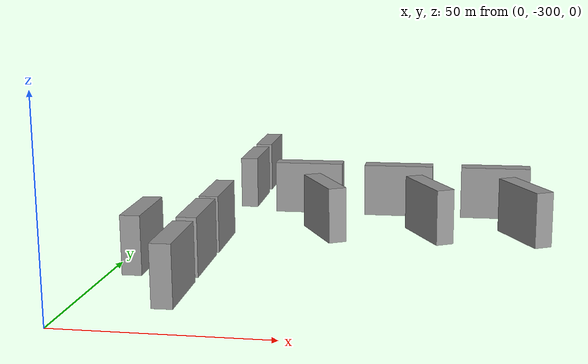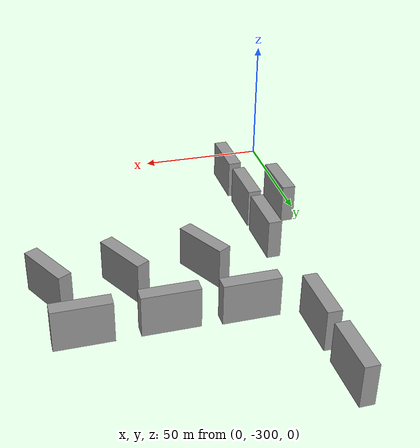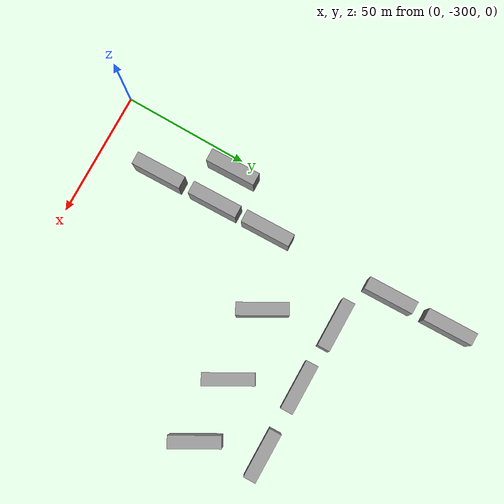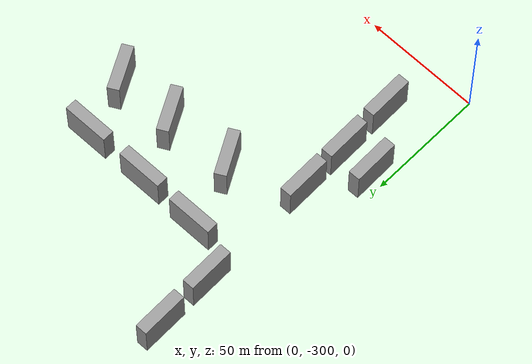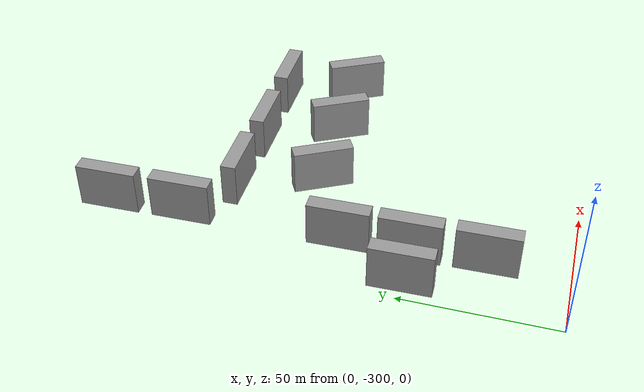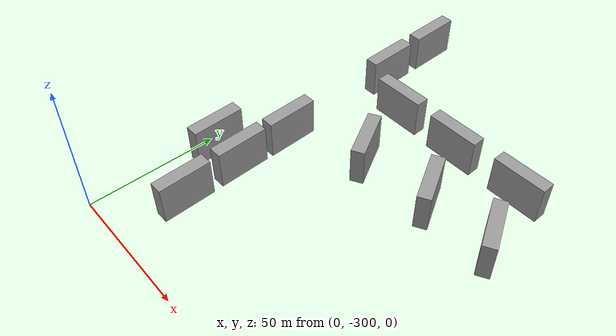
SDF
<sdf version="1.6">
 <world name="darpa_boxes">
  <model name="box_6">
   <link name="link">
    <inertial>
     <mass>1</mass>
     <inertia>
      <ixx>0.166667</ixx>
      <ixy>0</ixy>
      <ixz>0</ixz>
      <iyy>0.166667</iyy>
      <iyz>0</iyz>
      <izz>0.166667</izz>
     </inertia>
     <pose>0 0 7.5 0 -0 0</pose>
    </inertial>
    <visual name="visual">
     <geometry><box><size>5 20 15</size></box></geometry>
     <material>
      <script><name>Gazebo/Grey</name><uri>file://media/materials/scripts/gazebo.material</uri></script>
      <shader type="vertex"><normal_map>_default_</normal_map></shader>
      <ambient>0.3 0.3 0.3 1</ambient>
      <diffuse>0.7 0.7 0.7 1</diffuse>
      <specular>0.01 0.01 0.01 1</specular>
      <emissive>0 0 0 1</emissive>
     </material>
     <pose>0 0 7.5 0 -0 0</pose>
    </visual>
    <collision name="collision">
     <pose>0 0 7.5 0 -0 0</pose>
     <geometry><box><size>5 20 15</size></box></geometry>
     <surface>
      <friction>
       <ode><mu>1</mu><mu2>1</mu2><fdir1>0 0 0</fdir1><slip1>0</slip1><slip2>0</slip2></ode>
       <torsional>
        <coefficient>1</coefficient>
        <patch_radius>0</patch_radius>
        <surface_radius>0</surface_radius>
        <use_patch_radius>1</use_patch_radius>
        <ode><slip>0</slip></ode>
       </torsional>
      </friction>
      <bounce><restitution_coefficient>0</restitution_coefficient><threshold>1e+06</threshold></bounce>
      <contact>
       <collide_without_contact>0</collide_without_contact>
       <collide_without_contact_bitmask>1</collide_without_contact_bitmask>
       <collide_bitmask>1</collide_bitmask>
       <ode>
        <soft_cfm>0</soft_cfm>
        <soft_erp>0.2</soft_erp>
        <kp>1e+13</kp>
        <kd>1</kd>
        <max_vel>0.01</max_vel>
        <min_depth>0</min_depth>
       </ode>
       <bullet>
        <split_impulse>1</split_impulse>
        <split_impulse_penetration_threshold>-0.01</split_impulse_penetration_threshold>
        <soft_cfm>0</soft_cfm>
        <soft_erp>0.2</soft_erp>
        <kp>1e+13</kp>
        <kd>1</kd>
       </bullet>
      </contact>
     </surface>
    </collision>
   </link>
   <static>1</static>
   <pose>5.67981 -250.633 -0.049551 0.005047 -0.000114 0.022472</pose>
  </model>
  <model name="box_18">
   <link name="link">
    <inertial>
     <mass>1</mass>
     <inertia>
      <ixx>0.166667</ixx>
      <ixy>0</ixy>
      <ixz>0</ixz>
      <iyy>0.166667</iyy>
      <iyz>0</iyz>
      <izz>0.166667</izz>
     </inertia>
     <pose>0 0 7.5 0 -0 0</pose>
    </inertial>
    <visual name="visual">
     <geometry><box><size>5 20 15</size></box></geometry>
     <material>
      <script><name>Gazebo/Grey</name><uri>file://media/materials/scripts/gazebo.material</uri></script>
      <shader type="vertex"><normal_map>_default_</normal_map></shader>
      <ambient>0.3 0.3 0.3 1</ambient>
      <diffuse>0.7 0.7 0.7 1</diffuse>
      <specular>0.01 0.01 0.01 1</specular>
      <emissive>0 0 0 1</emissive>
     </material>
     <pose>0 0 7.5 0 -0 0</pose>
    </visual>
    <collision name="collision">
     <pose>0 0 7.5 0 -0 0</pose>
     <geometry><box><size>5 20 15</size></box></geometry>
     <surface>
      <friction>
       <ode><mu>1</mu><mu2>1</mu2><fdir1>0 0 0</fdir1><slip1>0</slip1><slip2>0</slip2></ode>
       <torsional>
        <coefficient>1</coefficient>
        <patch_radius>0</patch_radius>
        <surface_radius>0</surface_radius>
        <use_patch_radius>1</use_patch_radius>
        <ode><slip>0</slip></ode>
       </torsional>
      </friction>
      <bounce><restitution_coefficient>0</restitution_coefficient><threshold>1e+06</threshold></bounce>
      <contact>
       <collide_without_contact>0</collide_without_contact>
       <collide_without_contact_bitmask>1</collide_without_contact_bitmask>
       <collide_bitmask>1</collide_bitmask>
       <ode>
        <soft_cfm>0</soft_cfm>
        <soft_erp>0.2</soft_erp>
        <kp>1e+13</kp>
        <kd>1</kd>
        <max_vel>0.01</max_vel>
        <min_depth>0</min_depth>
       </ode>
       <bullet>
        <split_impulse>1</split_impulse>
        <split_impulse_penetration_threshold>-0.01</split_impulse_penetration_threshold>
        <soft_cfm>0</soft_cfm>
        <soft_erp>0.2</soft_erp>
        <kp>1e+13</kp>
        <kd>1</kd>
       </bullet>
      </contact>
     </surface>
    </collision>
   </link>
   <static>1</static>
   <pose>20.4301 -274.151 -0.049551 0.005047 -0.000114 0.022472</pose>
  </model>
  <model name="box_19">
   <link name="link">
    <inertial>
     <mass>1</mass>
     <inertia>
      <ixx>0.166667</ixx>
      <ixy>0</ixy>
      <ixz>0</ixz>
      <iyy>0.166667</iyy>
      <iyz>0</iyz>
      <izz>0.166667</izz>
     </inertia>
     <pose>0 0 7.5 0 -0 0</pose>
    </inertial>
    <visual name="visual">
     <geometry><box><size>5 20 15</size></box></geometry>
     <material>
      <script><name>Gazebo/Grey</name><uri>file://media/materials/scripts/gazebo.material</uri></script>
      <shader type="vertex"><normal_map>_default_</normal_map></shader>
      <ambient>0.3 0.3 0.3 1</ambient>
      <diffuse>0.7 0.7 0.7 1</diffuse>
      <specular>0.01 0.01 0.01 1</specular>
      <emissive>0 0 0 1</emissive>
     </material>
     <pose>0 0 7.5 0 -0 0</pose>
    </visual>
    <collision name="collision">
     <pose>0 0 7.5 0 -0 0</pose>
     <geometry><box><size>5 20 15</size></box></geometry>
     <surface>
      <friction>
       <ode><mu>1</mu><mu2>1</mu2><fdir1>0 0 0</fdir1><slip1>0</slip1><slip2>0</slip2></ode>
       <torsional>
        <coefficient>1</coefficient>
        <patch_radius>0</patch_radius>
        <surface_radius>0</surface_radius>
        <use_patch_radius>1</use_patch_radius>
        <ode><slip>0</slip></ode>
       </torsional>
      </friction>
      <bounce><restitution_coefficient>0</restitution_coefficient><threshold>1e+06</threshold></bounce>
      <contact>
       <collide_without_contact>0</collide_without_contact>
       <collide_without_contact_bitmask>1</collide_without_contact_bitmask>
       <collide_bitmask>1</collide_bitmask>
       <ode>
        <soft_cfm>0</soft_cfm>
        <soft_erp>0.2</soft_erp>
        <kp>1e+13</kp>
        <kd>1</kd>
        <max_vel>0.01</max_vel>
        <min_depth>0</min_depth>
       </ode>
       <bullet>
        <split_impulse>1</split_impulse>
        <split_impulse_penetration_threshold>-0.01</split_impulse_penetration_threshold>
        <soft_cfm>0</soft_cfm>
        <soft_erp>0.2</soft_erp>
        <kp>1e+13</kp>
        <kd>1</kd>
       </bullet>
      </contact>
     </surface>
    </collision>
   </link>
   <static>1</static>
   <pose>19.6822 -250.445 -0.049551 0.005047 -0.000114 0.022472</pose>
  </model>
  <model name="box_20">
   <link name="link">
    <inertial>
     <mass>1</mass>
     <inertia>
      <ixx>0.166667</ixx>
      <ixy>0</ixy>
      <ixz>0</ixz>
      <iyy>0.166667</iyy>
      <iyz>0</iyz>
      <izz>0.166667</izz>
     </inertia>
     <pose>0 0 7.5 0 -0 0</pose>
    </inertial>
    <visual name="visual">
     <geometry><box><size>5 20 15</size></box></geometry>
     <material>
      <script><name>Gazebo/Grey</name><uri>file://media/materials/scripts/gazebo.material</uri></script>
      <shader type="vertex"><normal_map>_default_</normal_map></shader>
      <ambient>0.3 0.3 0.3 1</ambient>
      <diffuse>0.7 0.7 0.7 1</diffuse>
      <specular>0.01 0.01 0.01 1</specular>
      <emissive>0 0 0 1</emissive>
     </material>
     <pose>0 0 7.5 0 -0 0</pose>
    </visual>
    <collision name="collision">
     <pose>0 0 7.5 0 -0 0</pose>
     <geometry><box><size>5 20 15</size></box></geometry>
     <surface>
      <friction>
       <ode><mu>1</mu><mu2>1</mu2><fdir1>0 0 0</fdir1><slip1>0</slip1><slip2>0</slip2></ode>
       <torsional>
        <coefficient>1</coefficient>
        <patch_radius>0</patch_radius>
        <surface_radius>0</surface_radius>
        <use_patch_radius>1</use_patch_radius>
        <ode><slip>0</slip></ode>
       </torsional>
      </friction>
      <bounce><restitution_coefficient>0</restitution_coefficient><threshold>1e+06</threshold></bounce>
      <contact>
       <collide_without_contact>0</collide_without_contact>
       <collide_without_contact_bitmask>1</collide_without_contact_bitmask>
       <collide_bitmask>1</collide_bitmask>
       <ode>
        <soft_cfm>0</soft_cfm>
        <soft_erp>0.2</soft_erp>
        <kp>1e+13</kp>
        <kd>1</kd>
        <max_vel>0.01</max_vel>
        <min_depth>0</min_depth>
       </ode>
       <bullet>
        <split_impulse>1</split_impulse>
        <split_impulse_penetration_threshold>-0.01</split_impulse_penetration_threshold>
        <soft_cfm>0</soft_cfm>
        <soft_erp>0.2</soft_erp>
        <kp>1e+13</kp>
        <kd>1</kd>
       </bullet>
      </contact>
     </surface>
    </collision>
   </link>
   <static>1</static>
   <pose>19.2326 -227.915 -0.049551 0.005047 -0.000114 0.022472</pose>
  </model>
  <model name="box_21">
   <link name="link">
    <inertial>
     <mass>1</mass>
     <inertia>
      <ixx>0.166667</ixx>
      <ixy>0</ixy>
      <ixz>0</ixz>
      <iyy>0.166667</iyy>
      <iyz>0</iyz>
      <izz>0.166667</izz>
     </inertia>
     <pose>0 0 7.5 0 -0 0</pose>
    </inertial>
    <visual name="visual">
     <geometry><box><size>5 20 15</size></box></geometry>
     <material>
      <script><name>Gazebo/Grey</name><uri>file://media/materials/scripts/gazebo.material</uri></script>
      <shader type="vertex"><normal_map>_default_</normal_map></shader>
      <ambient>0.3 0.3 0.3 1</ambient>
      <diffuse>0.7 0.7 0.7 1</diffuse>
      <specular>0.01 0.01 0.01 1</specular>
      <emissive>0 0 0 1</emissive>
     </material>
     <pose>0 0 7.5 0 -0 0</pose>
    </visual>
    <collision name="collision">
     <pose>0 0 7.5 0 -0 0</pose>
     <geometry><box><size>5 20 15</size></box></geometry>
     <surface>
      <friction>
       <ode><mu>1</mu><mu2>1</mu2><fdir1>0 0 0</fdir1><slip1>0</slip1><slip2>0</slip2></ode>
       <torsional>
        <coefficient>1</coefficient>
        <patch_radius>0</patch_radius>
        <surface_radius>0</surface_radius>
        <use_patch_radius>1</use_patch_radius>
        <ode><slip>0</slip></ode>
       </torsional>
      </friction>
      <bounce><restitution_coefficient>0</restitution_coefficient><threshold>1e+06</threshold></bounce>
      <contact>
       <collide_without_contact>0</collide_without_contact>
       <collide_without_contact_bitmask>1</collide_without_contact_bitmask>
       <collide_bitmask>1</collide_bitmask>
       <ode>
        <soft_cfm>0</soft_cfm>
        <soft_erp>0.2</soft_erp>
        <kp>1e+13</kp>
        <kd>1</kd>
        <max_vel>0.01</max_vel>
        <min_depth>0</min_depth>
       </ode>
       <bullet>
        <split_impulse>1</split_impulse>
        <split_impulse_penetration_threshold>-0.01</split_impulse_penetration_threshold>
        <soft_cfm>0</soft_cfm>
        <soft_erp>0.2</soft_erp>
        <kp>1e+13</kp>
        <kd>1</kd>
       </bullet>
      </contact>
     </surface>
    </collision>
   </link>
   <static>1</static>
   <pose>18.4209 -175.838 -0.049551 0.005047 -0.000114 0.022472</pose>
  </model>
  <model name="box_22">
   <link name="link">
    <inertial>
     <mass>1</mass>
     <inertia>
      <ixx>0.166667</ixx>
      <ixy>0</ixy>
      <ixz>0</ixz>
      <iyy>0.166667</iyy>
      <iyz>0</iyz>
      <izz>0.166667</izz>
     </inertia>
     <pose>0 0 7.5 0 -0 0</pose>
    </inertial>
    <visual name="visual">
     <geometry><box><size>5 20 15</size></box></geometry>
     <material>
      <script><name>Gazebo/Grey</name><uri>file://media/materials/scripts/gazebo.material</uri></script>
      <shader type="vertex"><normal_map>_default_</normal_map></shader>
      <ambient>0.3 0.3 0.3 1</ambient>
      <diffuse>0.7 0.7 0.7 1</diffuse>
      <specular>0.01 0.01 0.01 1</specular>
      <emissive>0 0 0 1</emissive>
     </material>
     <pose>0 0 7.5 0 -0 0</pose>
    </visual>
    <collision name="collision">
     <pose>0 0 7.5 0 -0 0</pose>
     <geometry><box><size>5 20 15</size></box></geometry>
     <surface>
      <friction>
       <ode><mu>1</mu><mu2>1</mu2><fdir1>0 0 0</fdir1><slip1>0</slip1><slip2>0</slip2></ode>
       <torsional>
        <coefficient>1</coefficient>
        <patch_radius>0</patch_radius>
        <surface_radius>0</surface_radius>
        <use_patch_radius>1</use_patch_radius>
        <ode><slip>0</slip></ode>
       </torsional>
      </friction>
      <bounce><restitution_coefficient>0</restitution_coefficient><threshold>1e+06</threshold></bounce>
      <contact>
       <collide_without_contact>0</collide_without_contact>
       <collide_without_contact_bitmask>1</collide_without_contact_bitmask>
       <collide_bitmask>1</collide_bitmask>
       <ode>
        <soft_cfm>0</soft_cfm>
        <soft_erp>0.2</soft_erp>
        <kp>1e+13</kp>
        <kd>1</kd>
        <max_vel>0.01</max_vel>
        <min_depth>0</min_depth>
       </ode>
       <bullet>
        <split_impulse>1</split_impulse>
        <split_impulse_penetration_threshold>-0.01</split_impulse_penetration_threshold>
        <soft_cfm>0</soft_cfm>
        <soft_erp>0.2</soft_erp>
        <kp>1e+13</kp>
        <kd>1</kd>
       </bullet>
      </contact>
     </surface>
    </collision>
   </link>
   <static>1</static>
   <pose>17.8317 -151.144 -0.049551 0.005047 -0.000114 0.022472</pose>
  </model>
  <model name="box_56">
   <link name="link">
    <inertial>
     <mass>1</mass>
     <inertia>
      <ixx>0.166667</ixx>
      <ixy>0</ixy>
      <ixz>0</ixz>
      <iyy>0.166667</iyy>
      <iyz>0</iyz>
      <izz>0.166667</izz>
     </inertia>
     <pose>0 0 7.5 0 -0 0</pose>
    </inertial>
    <visual name="visual">
     <geometry><box><size>5 20 15</size></box></geometry>
     <material>
      <script><name>Gazebo/Grey</name><uri>file://media/materials/scripts/gazebo.material</uri></script>
      <shader type="vertex"><normal_map>_default_</normal_map></shader>
      <ambient>0.3 0.3 0.3 1</ambient>
      <diffuse>0.7 0.7 0.7 1</diffuse>
      <specular>0.01 0.01 0.01 1</specular>
      <emissive>0 0 0 1</emissive>
     </material>
     <pose>0 0 7.5 0 -0 0</pose>
    </visual>
    <collision name="collision">
     <pose>0 0 7.5 0 -0 0</pose>
     <geometry><box><size>5 20 15</size></box></geometry>
     <surface>
      <friction>
       <ode><mu>1</mu><mu2>1</mu2><fdir1>0 0 0</fdir1><slip1>0</slip1><slip2>0</slip2></ode>
       <torsional>
        <coefficient>1</coefficient>
        <patch_radius>0</patch_radius>
        <surface_radius>0</surface_radius>
        <use_patch_radius>1</use_patch_radius>
        <ode><slip>0</slip></ode>
       </torsional>
      </friction>
      <bounce><restitution_coefficient>0</restitution_coefficient><threshold>1e+06</threshold></bounce>
      <contact>
       <collide_without_contact>0</collide_without_contact>
       <collide_without_contact_bitmask>1</collide_without_contact_bitmask>
       <collide_bitmask>1</collide_bitmask>
       <ode>
        <soft_cfm>0</soft_cfm>
        <soft_erp>0.2</soft_erp>
        <kp>1e+13</kp>
        <kd>1</kd>
        <max_vel>0.01</max_vel>
        <min_depth>0</min_depth>
       </ode>
       <bullet>
        <split_impulse>1</split_impulse>
        <split_impulse_penetration_threshold>-0.01</split_impulse_penetration_threshold>
        <soft_cfm>0</soft_cfm>
        <soft_erp>0.2</soft_erp>
        <kp>1e+13</kp>
        <kd>1</kd>
       </bullet>
      </contact>
     </surface>
    </collision>
   </link>
   <static>1</static>
   <pose>46.3387 -214.788 -0.049551 -0.004407 0.002461 -2.6324</pose>
  </model>
  <model name="box_57">
   <link name="link">
    <inertial>
     <mass>1</mass>
     <inertia>
      <ixx>0.166667</ixx>
      <ixy>0</ixy>
      <ixz>0</ixz>
      <iyy>0.166667</iyy>
      <iyz>0</iyz>
      <izz>0.166667</izz>
     </inertia>
     <pose>0 0 7.5 0 -0 0</pose>
    </inertial>
    <visual name="visual">
     <geometry><box><size>5 20 15</size></box></geometry>
     <material>
      <script><name>Gazebo/Grey</name><uri>file://media/materials/scripts/gazebo.material</uri></script>
      <shader type="vertex"><normal_map>_default_</normal_map></shader>
      <ambient>0.3 0.3 0.3 1</ambient>
      <diffuse>0.7 0.7 0.7 1</diffuse>
      <specular>0.01 0.01 0.01 1</specular>
      <emissive>0 0 0 1</emissive>
     </material>
     <pose>0 0 7.5 0 -0 0</pose>
    </visual>
    <collision name="collision">
     <pose>0 0 7.5 0 -0 0</pose>
     <geometry><box><size>5 20 15</size></box></geometry>
     <surface>
      <friction>
       <ode><mu>1</mu><mu2>1</mu2><fdir1>0 0 0</fdir1><slip1>0</slip1><slip2>0</slip2></ode>
       <torsional>
        <coefficient>1</coefficient>
        <patch_radius>0</patch_radius>
        <surface_radius>0</surface_radius>
        <use_patch_radius>1</use_patch_radius>
        <ode><slip>0</slip></ode>
       </torsional>
      </friction>
      <bounce><restitution_coefficient>0</restitution_coefficient><threshold>1e+06</threshold></bounce>
      <contact>
       <collide_without_contact>0</collide_without_contact>
       <collide_without_contact_bitmask>1</collide_without_contact_bitmask>
       <collide_bitmask>1</collide_bitmask>
       <ode>
        <soft_cfm>0</soft_cfm>
        <soft_erp>0.2</soft_erp>
        <kp>1e+13</kp>
        <kd>1</kd>
        <max_vel>0.01</max_vel>
        <min_depth>0</min_depth>
       </ode>
       <bullet>
        <split_impulse>1</split_impulse>
        <split_impulse_penetration_threshold>-0.01</split_impulse_penetration_threshold>
        <soft_cfm>0</soft_cfm>
        <soft_erp>0.2</soft_erp>
        <kp>1e+13</kp>
        <kd>1</kd>
       </bullet>
      </contact>
     </surface>
    </collision>
   </link>
   <static>1</static>
   <pose>75.1324 -212.939 -0.049551 -0.004407 0.002461 -2.6324</pose>
  </model>
  <model name="box_58">
   <link name="link">
    <inertial>
     <mass>1</mass>
     <inertia>
      <ixx>0.166667</ixx>
      <ixy>0</ixy>
      <ixz>0</ixz>
      <iyy>0.166667</iyy>
      <iyz>0</iyz>
      <izz>0.166667</izz>
     </inertia>
     <pose>0 0 7.5 0 -0 0</pose>
    </inertial>
    <visual name="visual">
     <geometry><box><size>5 20 15</size></box></geometry>
     <material>
      <script><name>Gazebo/Grey</name><uri>file://media/materials/scripts/gazebo.material</uri></script>
      <shader type="vertex"><normal_map>_default_</normal_map></shader>
      <ambient>0.3 0.3 0.3 1</ambient>
      <diffuse>0.7 0.7 0.7 1</diffuse>
      <specular>0.01 0.01 0.01 1</specular>
      <emissive>0 0 0 1</emissive>
     </material>
     <pose>0 0 7.5 0 -0 0</pose>
    </visual>
    <collision name="collision">
     <pose>0 0 7.5 0 -0 0</pose>
     <geometry><box><size>5 20 15</size></box></geometry>
     <surface>
      <friction>
       <ode><mu>1</mu><mu2>1</mu2><fdir1>0 0 0</fdir1><slip1>0</slip1><slip2>0</slip2></ode>
       <torsional>
        <coefficient>1</coefficient>
        <patch_radius>0</patch_radius>
        <surface_radius>0</surface_radius>
        <use_patch_radius>1</use_patch_radius>
        <ode><slip>0</slip></ode>
       </torsional>
      </friction>
      <bounce><restitution_coefficient>0</restitution_coefficient><threshold>1e+06</threshold></bounce>
      <contact>
       <collide_without_contact>0</collide_without_contact>
       <collide_without_contact_bitmask>1</collide_without_contact_bitmask>
       <collide_bitmask>1</collide_bitmask>
       <ode>
        <soft_cfm>0</soft_cfm>
        <soft_erp>0.2</soft_erp>
        <kp>1e+13</kp>
        <kd>1</kd>
        <max_vel>0.01</max_vel>
        <min_depth>0</min_depth>
       </ode>
       <bullet>
        <split_impulse>1</split_impulse>
        <split_impulse_penetration_threshold>-0.01</split_impulse_penetration_threshold>
        <soft_cfm>0</soft_cfm>
        <soft_erp>0.2</soft_erp>
        <kp>1e+13</kp>
        <kd>1</kd>
       </bullet>
      </contact>
     </surface>
    </collision>
   </link>
   <static>1</static>
   <pose>101.146 -212.35 -0.049551 -0.004407 0.002461 -2.6324</pose>
  </model>
  <model name="box_59">
   <link name="link">
    <inertial>
     <mass>1</mass>
     <inertia>
      <ixx>0.166667</ixx>
      <ixy>0</ixy>
      <ixz>0</ixz>
      <iyy>0.166667</iyy>
      <iyz>0</iyz>
      <izz>0.166667</izz>
     </inertia>
     <pose>0 0 7.5 0 -0 0</pose>
    </inertial>
    <visual name="visual">
     <geometry><box><size>5 20 15</size></box></geometry>
     <material>
      <script><name>Gazebo/Grey</name><uri>file://media/materials/scripts/gazebo.material</uri></script>
      <shader type="vertex"><normal_map>_default_</normal_map></shader>
      <ambient>0.3 0.3 0.3 1</ambient>
      <diffuse>0.7 0.7 0.7 1</diffuse>
      <specular>0.01 0.01 0.01 1</specular>
      <emissive>0 0 0 1</emissive>
     </material>
     <pose>0 0 7.5 0 -0 0</pose>
    </visual>
    <collision name="collision">
     <pose>0 0 7.5 0 -0 0</pose>
     <geometry><box><size>5 20 15</size></box></geometry>
     <surface>
      <friction>
       <ode><mu>1</mu><mu2>1</mu2><fdir1>0 0 0</fdir1><slip1>0</slip1><slip2>0</slip2></ode>
       <torsional>
        <coefficient>1</coefficient>
        <patch_radius>0</patch_radius>
        <surface_radius>0</surface_radius>
        <use_patch_radius>1</use_patch_radius>
        <ode><slip>0</slip></ode>
       </torsional>
      </friction>
      <bounce><restitution_coefficient>0</restitution_coefficient><threshold>1e+06</threshold></bounce>
      <contact>
       <collide_without_contact>0</collide_without_contact>
       <collide_without_contact_bitmask>1</collide_without_contact_bitmask>
       <collide_bitmask>1</collide_bitmask>
       <ode>
        <soft_cfm>0</soft_cfm>
        <soft_erp>0.2</soft_erp>
        <kp>1e+13</kp>
        <kd>1</kd>
        <max_vel>0.01</max_vel>
        <min_depth>0</min_depth>
       </ode>
       <bullet>
        <split_impulse>1</split_impulse>
        <split_impulse_penetration_threshold>-0.01</split_impulse_penetration_threshold>
        <soft_cfm>0</soft_cfm>
        <soft_erp>0.2</soft_erp>
        <kp>1e+13</kp>
        <kd>1</kd>
       </bullet>
      </contact>
     </surface>
    </collision>
   </link>
   <static>1</static>
   <pose>37.9257 -188.214 -0.049551 8.7e-05 0.005047 -1.55363</pose>
  </model>
  <model name="box_60">
   <link name="link">
    <inertial>
     <mass>1</mass>
     <inertia>
      <ixx>0.166667</ixx>
      <ixy>0</ixy>
      <ixz>0</ixz>
      <iyy>0.166667</iyy>
      <iyz>0</iyz>
      <izz>0.166667</izz>
     </inertia>
     <pose>0 0 7.5 0 -0 0</pose>
    </inertial>
    <visual name="visual">
     <geometry><box><size>5 20 15</size></box></geometry>
     <material>
      <script><name>Gazebo/Grey</name><uri>file://media/materials/scripts/gazebo.material</uri></script>
      <shader type="vertex"><normal_map>_default_</normal_map></shader>
      <ambient>0.3 0.3 0.3 1</ambient>
      <diffuse>0.7 0.7 0.7 1</diffuse>
      <specular>0.01 0.01 0.01 1</specular>
      <emissive>0 0 0 1</emissive>
     </material>
     <pose>0 0 7.5 0 -0 0</pose>
    </visual>
    <collision name="collision">
     <pose>0 0 7.5 0 -0 0</pose>
     <geometry><box><size>5 20 15</size></box></geometry>
     <surface>
      <friction>
       <ode><mu>1</mu><mu2>1</mu2><fdir1>0 0 0</fdir1><slip1>0</slip1><slip2>0</slip2></ode>
       <torsional>
        <coefficient>1</coefficient>
        <patch_radius>0</patch_radius>
        <surface_radius>0</surface_radius>
        <use_patch_radius>1</use_patch_radius>
        <ode><slip>0</slip></ode>
       </torsional>
      </friction>
      <bounce><restitution_coefficient>0</restitution_coefficient><threshold>1e+06</threshold></bounce>
      <contact>
       <collide_without_contact>0</collide_without_contact>
       <collide_without_contact_bitmask>1</collide_without_contact_bitmask>
       <collide_bitmask>1</collide_bitmask>
       <ode>
        <soft_cfm>0</soft_cfm>
        <soft_erp>0.2</soft_erp>
        <kp>1e+13</kp>
        <kd>1</kd>
        <max_vel>0.01</max_vel>
        <min_depth>0</min_depth>
       </ode>
       <bullet>
        <split_impulse>1</split_impulse>
        <split_impulse_penetration_threshold>-0.01</split_impulse_penetration_threshold>
        <soft_cfm>0</soft_cfm>
        <soft_erp>0.2</soft_erp>
        <kp>1e+13</kp>
        <kd>1</kd>
       </bullet>
      </contact>
     </surface>
    </collision>
   </link>
   <static>1</static>
   <pose>64.7514 -188.681 -0.049551 8.7e-05 0.005047 -1.55363</pose>
  </model>
  <model name="box_61">
   <link name="link">
    <inertial>
     <mass>1</mass>
     <inertia>
      <ixx>0.166667</ixx>
      <ixy>0</ixy>
      <ixz>0</ixz>
      <iyy>0.166667</iyy>
      <iyz>0</iyz>
      <izz>0.166667</izz>
     </inertia>
     <pose>0 0 7.5 0 -0 0</pose>
    </inertial>
    <visual name="visual">
     <geometry><box><size>5 20 15</size></box></geometry>
     <material>
      <script><name>Gazebo/Grey</name><uri>file://media/materials/scripts/gazebo.material</uri></script>
      <shader type="vertex"><normal_map>_default_</normal_map></shader>
      <ambient>0.3 0.3 0.3 1</ambient>
      <diffuse>0.7 0.7 0.7 1</diffuse>
      <specular>0.01 0.01 0.01 1</specular>
      <emissive>0 0 0 1</emissive>
     </material>
     <pose>0 0 7.5 0 -0 0</pose>
    </visual>
    <collision name="collision">
     <pose>0 0 7.5 0 -0 0</pose>
     <geometry><box><size>5 20 15</size></box></geometry>
     <surface>
      <friction>
       <ode><mu>1</mu><mu2>1</mu2><fdir1>0 0 0</fdir1><slip1>0</slip1><slip2>0</slip2></ode>
       <torsional>
        <coefficient>1</coefficient>
        <patch_radius>0</patch_radius>
        <surface_radius>0</surface_radius>
        <use_patch_radius>1</use_patch_radius>
        <ode><slip>0</slip></ode>
       </torsional>
      </friction>
      <bounce><restitution_coefficient>0</restitution_coefficient><threshold>1e+06</threshold></bounce>
      <contact>
       <collide_without_contact>0</collide_without_contact>
       <collide_without_contact_bitmask>1</collide_without_contact_bitmask>
       <collide_bitmask>1</collide_bitmask>
       <ode>
        <soft_cfm>0</soft_cfm>
        <soft_erp>0.2</soft_erp>
        <kp>1e+13</kp>
        <kd>1</kd>
        <max_vel>0.01</max_vel>
        <min_depth>0</min_depth>
       </ode>
       <bullet>
        <split_impulse>1</split_impulse>
        <split_impulse_penetration_threshold>-0.01</split_impulse_penetration_threshold>
        <soft_cfm>0</soft_cfm>
        <soft_erp>0.2</soft_erp>
        <kp>1e+13</kp>
        <kd>1</kd>
       </bullet>
      </contact>
     </surface>
    </collision>
   </link>
   <static>1</static>
   <pose>93.1371 -188.198 -0.049551 8.7e-05 0.005047 -1.55363</pose>
  </model>
 </world>
</sdf>
